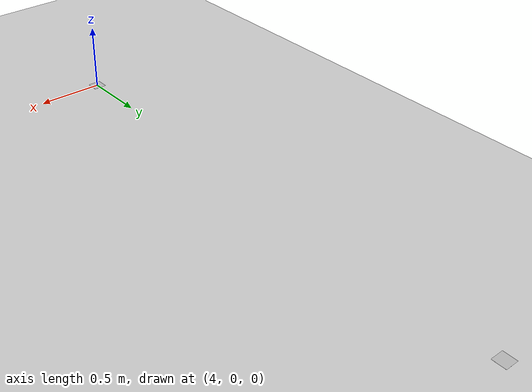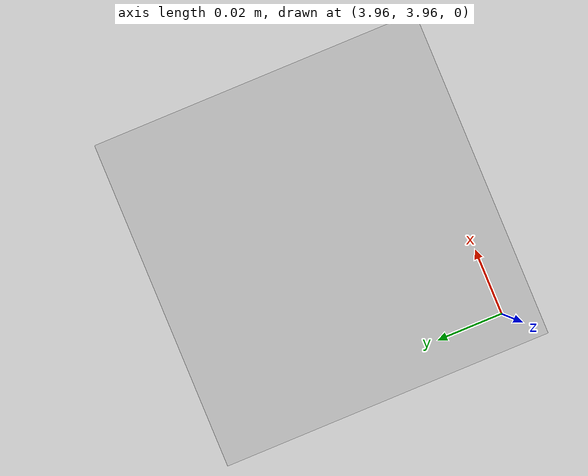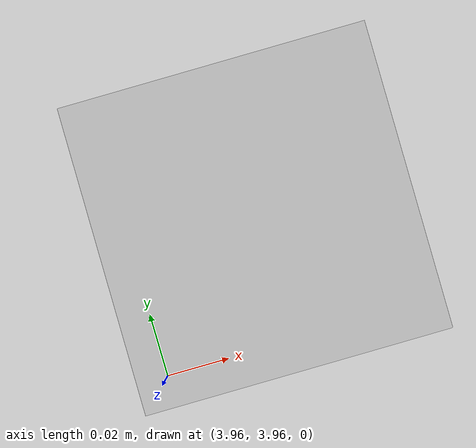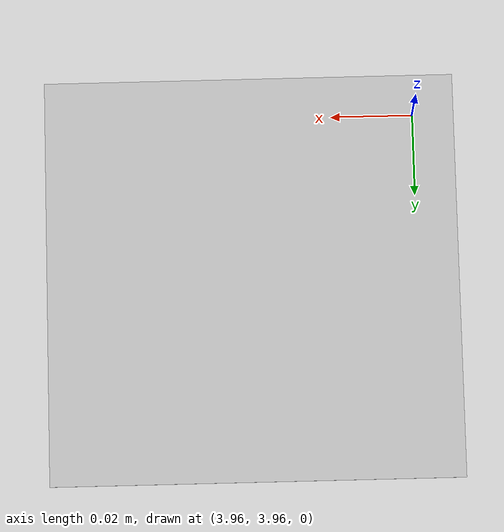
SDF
<?xml version="1.0" ?>
<sdf version="1.9">
  <world name="custom_aruco">
  <physics type="ode">
      <max_step_size>0.004</max_step_size>
      <real_time_factor>1.0</real_time_factor>
      <real_time_update_rate>250</real_time_update_rate>
    </physics>
    <plugin name="gz::sim::systems::Physics" filename="gz-sim-physics-system"/>
    <plugin name="gz::sim::systems::UserCommands" filename="gz-sim-user-commands-system"/>
    <plugin name="gz::sim::systems::SceneBroadcaster" filename="gz-sim-scene-broadcaster-system"/>
    <plugin name="gz::sim::systems::Contact" filename="gz-sim-contact-system"/>
    <plugin name="gz::sim::systems::Imu" filename="gz-sim-imu-system"/>
    <plugin name="gz::sim::systems::AirPressure" filename="gz-sim-air-pressure-system"/>
    <plugin name="gz::sim::systems::ApplyLinkWrench" filename="gz-sim-apply-link-wrench-system"/>
    <plugin name="gz::sim::systems::NavSat" filename="gz-sim-navsat-system"/>
    <plugin name="gz::sim::systems::Sensors" filename="gz-sim-sensors-system">
      <render_engine>ogre2</render_engine>
    </plugin>
    <plugin filename="libMovingArucoPlugin.so" name="gazebo::MovingArucoPlugin">
    </plugin>
    <gravity>0 0 -9.8</gravity>
    <magnetic_field>6e-06 2.3e-05 -4.2e-05</magnetic_field>
    <atmosphere type="adiabatic"/>
    <scene>
      <grid>false</grid>
      <ambient>0.4 0.4 0.4 1</ambient>
      <background>0.7 0.7 0.7 1</background>
      <shadows>true</shadows>
    </scene>
    <model name="ground_plane">
      <static>true</static>
      <link name="link">
        <collision name="collision">
          <geometry>
            <plane>
              <normal>0 0 1</normal>
              <size>1 1</size>
            </plane>
          </geometry>
          <surface>
            <friction>
              <ode/>
            </friction>
            <bounce/>
            <contact/>
          </surface>
        </collision>
        <visual name="visual">
          <geometry>
            <plane>
              <normal>0 0 1</normal>
              <size>100 100</size>
            </plane>
          </geometry>
          <material>
            <ambient>0.8 0.8 0.8 1</ambient>
            <diffuse>0.8 0.8 0.8 1</diffuse>
            <specular>0.8 0.8 0.8 1</specular>
          </material>
        </visual>
        <pose>0 0 0 0 -0 0</pose>
        <inertial>
          <pose>0 0 0 0 -0 0</pose>
          <mass>1</mass>
          <inertia>
            <ixx>1</ixx>
            <ixy>0</ixy>
            <ixz>0</ixz>
            <iyy>1</iyy>
            <iyz>0</iyz>
            <izz>1</izz>
          </inertia>
        </inertial>
        <enable_wind>false</enable_wind>
      </link>
      <pose>0 0 0 0 -0 0</pose>
      <self_collide>false</self_collide>
    </model>
    <light name="sunUTC" type="directional">
      <pose>0 0 500 0 -0 0</pose>
      <cast_shadows>true</cast_shadows>
      <intensity>1</intensity>
      <direction>0.001 0.625 -0.78</direction>
      <diffuse>0.904 0.904 0.904 1</diffuse>
      <specular>0.271 0.271 0.271 1</specular>
      <attenuation>
        <range>2000</range>
        <linear>0</linear>
        <constant>1</constant>
        <quadratic>0</quadratic>
      </attenuation>
      <spot>
        <inner_angle>0</inner_angle>
        <outer_angle>0</outer_angle>
        <falloff>0</falloff>
      </spot>
    </light>
    <spherical_coordinates>
      <surface_model>EARTH_WGS84</surface_model>
      <world_frame_orientation>ENU</world_frame_orientation>
      <latitude_deg>47.397971057728974</latitude_deg>
      <longitude_deg> 8.546163739800146</longitude_deg>
      <elevation>0</elevation>
    </spherical_coordinates>
    <include>
      <uri>model://aruco_marker</uri>
      <name>aruco_marker_1</name>
      <pose>4 0 0.001 0 0 0</pose>
    </include>

    <include>
      <uri>model://aruco_marker</uri>
      <name>aruco_marker_2</name>
      <pose>4 4 0.001 0 0 0</pose>
    </include>
  </world>
</sdf>

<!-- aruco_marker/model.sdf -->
<sdf version="1.4"> <model name="aruco_marker">   <static>true</static>
    <link name="link">
      <collision name="collision">
        <geometry>
          <plane>
            <normal>0 0 1</normal>
            <size>0.1 0.1</size>
          </plane>
        </geometry>
        <surface>
          <friction>
            <ode>
              <mu>100</mu>
              <mu2>50</mu2>
            </ode>
          </friction>
        </surface>
      </collision>
      <visual name="visual">
        <cast_shadows>false</cast_shadows>
        <geometry>
          <plane>
            <normal>0 0 1</normal>
            <size>0.1 0.1</size>    </plane>    <mesh>
        <uri>model://aruco_marker/materials/textures/aruco_marker.dae</uri>
          </mesh>
        </geometry>
        <material>
          <script>
            <uri>model://aruco_marker/materials/scripts/</uri>
            <uri>model://aruco_marker/materials/textures/</uri>
            <name>ArucoMarker/Image</name>
          </script>
        </material>
      </visual>
    </link>   </model> </sdf>
